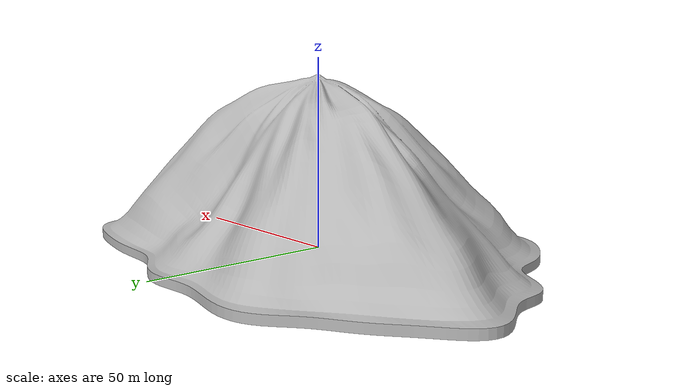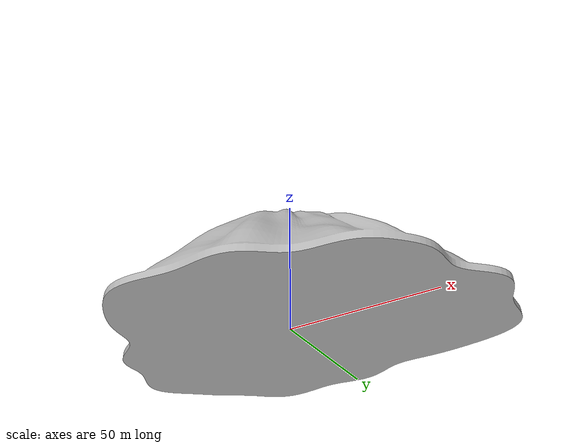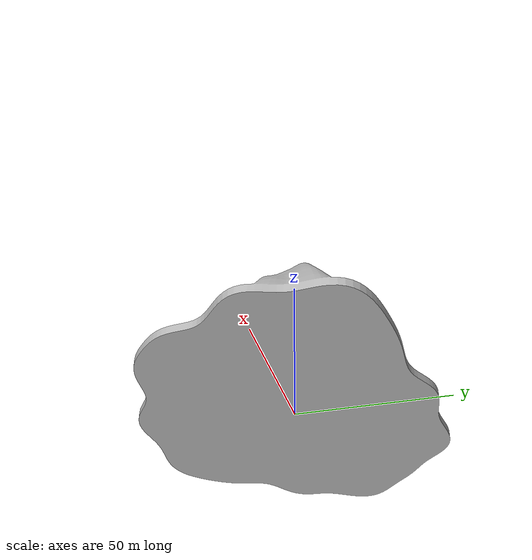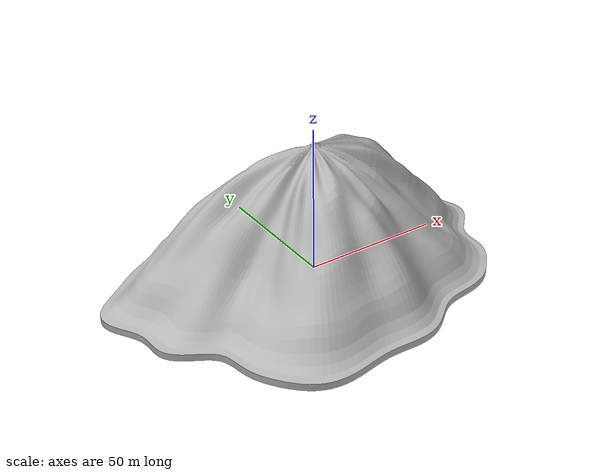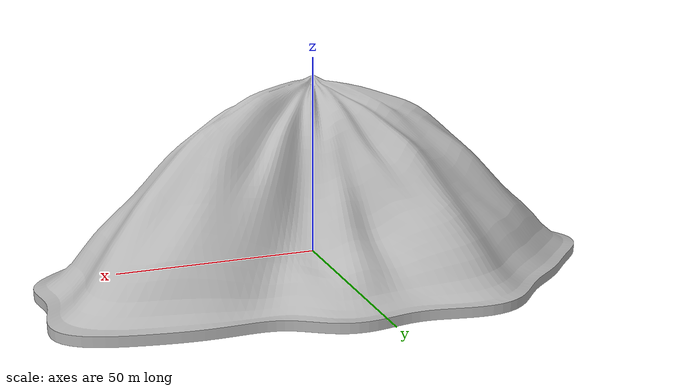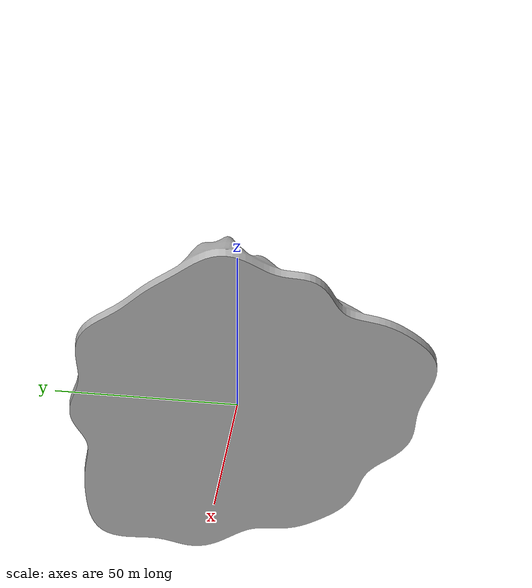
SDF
<?xml version="1.0"?>
<sdf version="1.6">
  <model name="f250_clean_mountain_probe_visual">
    <static>true</static>
    <link name="visual_link">
      <visual name="clean_single_mountain_probe_visual">
        <geometry>
          <mesh>
            <uri>model://f250_clean_mountain_probe_visual/meshes/clean_single_mountain_probe_detailed.obj</uri>
          </mesh>
        </geometry>
      </visual>
    </link>
  </model>
</sdf>
